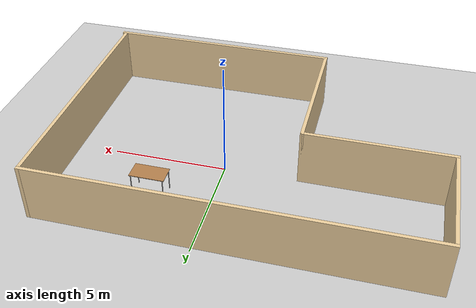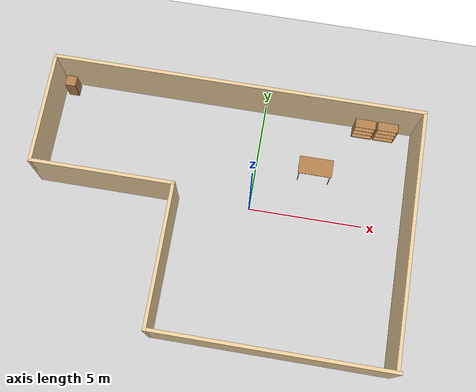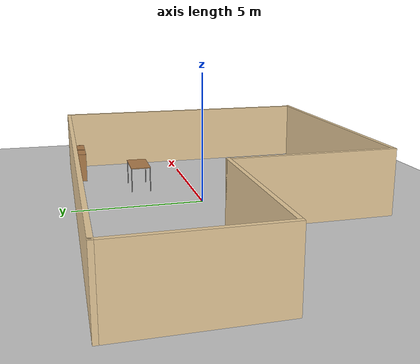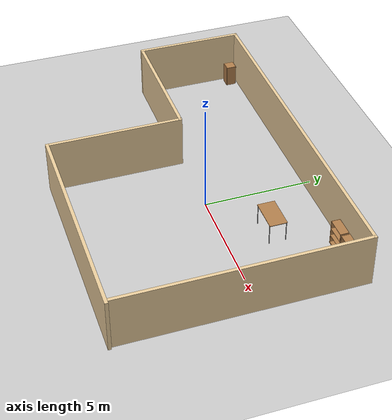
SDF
<sdf version="1.7">
 <world name="default">
  <light name="sun" type="directional">
   <pose>0 0 10 0 -0 0</pose>
   <diffuse>0.8 0.8 0.8 1</diffuse>
   <specular>0.2 0.2 0.2 1</specular>
   <attenuation>
    <range>1000</range>
    <constant>0.9</constant>
    <linear>0.01</linear>
    <quadratic>0.001</quadratic>
   </attenuation>
   <direction>-0.5 0.1 -0.9</direction>
   <spot><inner_angle>0</inner_angle><outer_angle>0</outer_angle><falloff>0</falloff></spot>
  </light>
  <model name="ground_plane">
   <static>1</static>
   <link name="link">
    <collision name="collision">
     <geometry><plane><normal>0 0 1</normal><size>100 100</size></plane></geometry>
     <surface>
      <contact><collide_bitmask>65535</collide_bitmask></contact>
      <friction><ode><mu>100</mu><mu2>50</mu2></ode></friction>
     </surface>
    </collision>
    <visual name="visual">
     <cast_shadows>0</cast_shadows>
     <geometry><plane><normal>0 0 1</normal><size>100 100</size></plane></geometry>
     <material>
      <script><uri>file://media/materials/scripts/gazebo.material</uri><name>Gazebo/Grey</name></script>
     </material>
    </visual>
   </link>
  </model>
  <gravity>0 0 -9.8</gravity>
  <magnetic_field>6e-06 2.3e-05 -4.2e-05</magnetic_field>
  <atmosphere type="adiabatic"/>
  <physics type="ode">
   <max_step_size>0.001</max_step_size>
   <real_time_factor>1</real_time_factor>
   <real_time_update_rate>1000</real_time_update_rate>
  </physics>
  <scene><ambient>0.4 0.4 0.4 1</ambient><background>0.7 0.7 0.7 1</background><shadows>1</shadows></scene>
  <audio><device>default</device></audio>
  <spherical_coordinates>
   <surface_model>EARTH_WGS84</surface_model>
   <latitude_deg>0</latitude_deg>
   <longitude_deg>0</longitude_deg>
   <elevation>0</elevation>
   <heading_deg>0</heading_deg>
  </spherical_coordinates>
  <model name="custom_room">
   <pose>-1.22692 -0.721484 0 0 -0 0</pose>
   <link name="Wall_10">
    <collision name="Wall_10_Collision">
     <geometry><box><size>10.25 0.15 2.5</size></box></geometry>
     <pose>0 0 1.25 0 -0 0</pose>
    </collision>
    <visual name="Wall_10_Visual">
     <pose>0 0 1.25 0 -0 0</pose>
     <geometry><box><size>10.25 0.15 2.5</size></box></geometry>
     <material>
      <script><uri>file://media/materials/scripts/gazebo.material</uri><name>Gazebo/Grey</name></script>
      <ambient>0.921569 0.807843 0.615686 1</ambient>
     </material>
     <meta><layer>0</layer></meta>
    </visual>
    <pose>3.05 -5.475 0 0 -0 0</pose>
   </link>
   <link name="Wall_13">
    <collision name="Wall_13_Collision">
     <geometry><box><size>10.9694 0.15 2.5</size></box></geometry>
     <pose>0 0 1.25 0 -0 0</pose>
    </collision>
    <visual name="Wall_13_Visual">
     <pose>0 0 1.25 0 -0 0</pose>
     <geometry><box><size>10.9694 0.15 2.5</size></box></geometry>
     <material>
      <script><uri>file://media/materials/scripts/gazebo.material</uri><name>Gazebo/Grey</name></script>
      <ambient>0.921569 0.807843 0.615686 1</ambient>
     </material>
     <meta><layer>0</layer></meta>
    </visual>
    <pose>8 0.065295 0 0 -0 -1.5708</pose>
   </link>
   <link name="Wall_2">
    <collision name="Wall_2_Collision">
     <geometry><box><size>16.25 0.15 2.5</size></box></geometry>
     <pose>0 0 1.25 0 -0 0</pose>
    </collision>
    <visual name="Wall_2_Visual">
     <pose>0 0 1.25 0 -0 0</pose>
     <geometry><box><size>16.25 0.15 2.5</size></box></geometry>
     <material>
      <script><uri>file://media/materials/scripts/gazebo.material</uri><name>Gazebo/Grey</name></script>
      <ambient>0.921569 0.807843 0.615686 1</ambient>
     </material>
     <meta><layer>0</layer></meta>
    </visual>
    <pose>-0.049999 5.475 0 0 -0 3.14159</pose>
   </link>
   <link name="Wall_3">
    <collision name="Wall_3_Collision">
     <geometry><box><size>5 0.15 2.5</size></box></geometry>
     <pose>0 0 1.25 0 -0 0</pose>
    </collision>
    <visual name="Wall_3_Visual">
     <pose>0 0 1.25 0 -0 0</pose>
     <geometry><box><size>5 0.15 2.5</size></box></geometry>
     <material>
      <script><uri>file://media/materials/scripts/gazebo.material</uri><name>Gazebo/Grey</name></script>
      <ambient>0.921569 0.807843 0.615686 1</ambient>
     </material>
     <meta><layer>0</layer></meta>
    </visual>
    <pose>-8.1 3.05 0 0 -0 -1.5708</pose>
   </link>
   <link name="Wall_4">
    <collision name="Wall_4_Collision">
     <geometry><box><size>6.25 0.15 2.5</size></box></geometry>
     <pose>0 0 1.25 0 -0 0</pose>
    </collision>
    <visual name="Wall_4_Visual">
     <pose>0 0 1.25 0 -0 0</pose>
     <geometry><box><size>6.25 0.15 2.5</size></box></geometry>
     <material>
      <script><uri>file://media/materials/scripts/gazebo.material</uri><name>Gazebo/Grey</name></script>
      <ambient>0.921569 0.807843 0.615686 1</ambient>
     </material>
     <meta><layer>0</layer></meta>
    </visual>
    <pose>-5.05 0.625 0 0 -0 0</pose>
   </link>
   <link name="Wall_9">
    <collision name="Wall_9_Collision">
     <geometry><box><size>6.25 0.15 2.5</size></box></geometry>
     <pose>0 0 1.25 0 -0 0</pose>
    </collision>
    <visual name="Wall_9_Visual">
     <pose>0 0 1.25 0 -0 0</pose>
     <geometry><box><size>6.25 0.15 2.5</size></box></geometry>
     <material>
      <script><uri>file://media/materials/scripts/gazebo.material</uri><name>Gazebo/Grey</name></script>
      <ambient>0.921569 0.807843 0.615686 1</ambient>
     </material>
     <meta><layer>0</layer></meta>
    </visual>
    <pose>-2 -2.425 0 0 -0 -1.5708</pose>
   </link>
   <static>1</static>
  </model>
  <model name="bookshelf">
   <static>1</static>
   <link name="link">
    <inertial><mass>1</mass></inertial>
    <collision name="back">
     <pose>0 0.005 0.6 0 -0 0</pose>
     <geometry><box><size>0.9 0.01 1.2</size></box></geometry>
    </collision>
    <visual name="visual1">
     <pose>0 0.005 0.6 0 -0 0</pose>
     <geometry><box><size>0.9 0.01 1.2</size></box></geometry>
     <material>
      <script><uri>file://media/materials/scripts/gazebo.material</uri><name>Gazebo/Wood</name></script>
     </material>
    </visual>
    <collision name="left_side">
     <pose>0.45 -0.195 0.6 0 -0 0</pose>
     <geometry><box><size>0.02 0.4 1.2</size></box></geometry>
    </collision>
    <visual name="visual2">
     <pose>0.45 -0.195 0.6 0 -0 0</pose>
     <geometry><box><size>0.02 0.4 1.2</size></box></geometry>
     <material>
      <script><uri>file://media/materials/scripts/gazebo.material</uri><name>Gazebo/Wood</name></script>
     </material>
    </visual>
    <collision name="right_side">
     <pose>-0.45 -0.195 0.6 0 -0 0</pose>
     <geometry><box><size>0.02 0.4 1.2</size></box></geometry>
    </collision>
    <visual name="visual3">
     <pose>-0.45 -0.195 0.6 0 -0 0</pose>
     <geometry><box><size>0.02 0.4 1.2</size></box></geometry>
     <material>
      <script><uri>file://media/materials/scripts/gazebo.material</uri><name>Gazebo/Wood</name></script>
     </material>
    </visual>
    <collision name="bottom">
     <pose>0 -0.195 0.03 0 -0 0</pose>
     <geometry><box><size>0.88 0.4 0.06</size></box></geometry>
    </collision>
    <visual name="visual4">
     <pose>0 -0.195 0.03 0 -0 0</pose>
     <geometry><box><size>0.88 0.4 0.06</size></box></geometry>
     <material>
      <script><uri>file://media/materials/scripts/gazebo.material</uri><name>Gazebo/Wood</name></script>
     </material>
    </visual>
    <collision name="top">
     <pose>0 -0.195 1.19 0 -0 0</pose>
     <geometry><box><size>0.88 0.4 0.02</size></box></geometry>
    </collision>
    <visual name="visual5">
     <pose>0 -0.195 1.19 0 -0 0</pose>
     <geometry><box><size>0.88 0.4 0.02</size></box></geometry>
     <material>
      <script><uri>file://media/materials/scripts/gazebo.material</uri><name>Gazebo/Wood</name></script>
     </material>
    </visual>
    <collision name="low_shelf">
     <pose>0 -0.195 0.43 0 -0 0</pose>
     <geometry><box><size>0.88 0.4 0.02</size></box></geometry>
    </collision>
    <visual name="visual6">
     <pose>0 -0.195 0.43 0 -0 0</pose>
     <geometry><box><size>0.88 0.4 0.02</size></box></geometry>
     <material>
      <script><uri>file://media/materials/scripts/gazebo.material</uri><name>Gazebo/Wood</name></script>
     </material>
    </visual>
    <collision name="high_shelf">
     <pose>0 -0.195 0.8 0 -0 0</pose>
     <geometry><box><size>0.88 0.4 0.02</size></box></geometry>
    </collision>
    <visual name="visual7">
     <pose>0 -0.195 0.8 0 -0 0</pose>
     <geometry><box><size>0.88 0.4 0.02</size></box></geometry>
     <material>
      <script><uri>file://media/materials/scripts/gazebo.material</uri><name>Gazebo/Wood</name></script>
     </material>
    </visual>
   </link>
   <pose>5.4805 4.58337 0 0 -0 0</pose>
  </model>
  <model name="cabinet">
   <static>1</static>
   <link name="cabinet_bottom_plate">
    <inertial>
     <pose>0 0 -1 0 -0 0</pose>
     <inertia><ixx>2.05</ixx><ixy>0</ixy><ixz>0</ixz><iyy>2.05</iyy><iyz>0</iyz><izz>2.05</izz></inertia>
     <mass>25</mass>
    </inertial>
    <collision name="cabinet_bottom_plate_geom">
     <pose>0 0 0.01 0 -0 0</pose>
     <geometry><box><size>0.45 0.45 0.02</size></box></geometry>
    </collision>
    <visual name="cabinet_bottom_plate_geom_visual">
     <pose>0 0 0.01 0 -0 0</pose>
     <geometry><box><size>0.45 0.45 0.02</size></box></geometry>
     <material>
      <script><uri>file://media/materials/scripts/gazebo.material</uri><name>Gazebo/Wood</name></script>
     </material>
    </visual>
    <collision name="cabinet_bottom_plate_geom_cabinet_back_plate">
     <pose>0.235 0 0.51 0 -0 0</pose>
     <geometry><box><size>0.02 0.45 1.02</size></box></geometry>
    </collision>
    <visual name="cabinet_bottom_plate_geom_cabinet_back_plate_visual">
     <pose>0.235 0 0.51 0 -0 0</pose>
     <geometry><box><size>0.02 0.45 1.02</size></box></geometry>
     <material>
      <script><uri>file://media/materials/scripts/gazebo.material</uri><name>Gazebo/Wood</name></script>
     </material>
    </visual>
    <collision name="cabinet_bottom_plate_geom_cabinet_left_plate">
     <pose>0 0.235 0.51 0 -0 0</pose>
     <geometry><box><size>0.45 0.02 1.02</size></box></geometry>
    </collision>
    <visual name="cabinet_bottom_plate_geom_cabinet_left_plate_visual">
     <pose>0 0.235 0.51 0 -0 0</pose>
     <geometry><box><size>0.45 0.02 1.02</size></box></geometry>
     <material>
      <script><uri>file://media/materials/scripts/gazebo.material</uri><name>Gazebo/Wood</name></script>
     </material>
    </visual>
    <collision name="cabinet_bottom_plate_geom_cabinet_middle_plate">
     <pose>0 0 0.51 0 -0 0</pose>
     <geometry><box><size>0.45 0.45 0.02</size></box></geometry>
    </collision>
    <visual name="cabinet_bottom_plate_geom_cabinet_middle_plate_visual">
     <pose>0 0 0.51 0 -0 0</pose>
     <geometry><box><size>0.45 0.45 0.02</size></box></geometry>
     <material>
      <script><uri>file://media/materials/scripts/gazebo.material</uri><name>Gazebo/Wood</name></script>
     </material>
    </visual>
    <collision name="cabinet_bottom_plate_geom_cabinet_right_plate">
     <pose>0 -0.235 0.51 0 -0 0</pose>
     <geometry><box><size>0.45 0.02 1.02</size></box></geometry>
    </collision>
    <visual name="cabinet_bottom_plate_geom_cabinet_right_plate_visual">
     <pose>0 -0.235 0.51 0 -0 0</pose>
     <geometry><box><size>0.45 0.02 1.02</size></box></geometry>
     <material>
      <script><uri>file://media/materials/scripts/gazebo.material</uri><name>Gazebo/Wood</name></script>
     </material>
    </visual>
    <collision name="cabinet_bottom_plate_geom_cabinet_top_plate">
     <pose>0 0 1.01 0 -0 0</pose>
     <geometry><box><size>0.45 0.45 0.02</size></box></geometry>
    </collision>
    <visual name="cabinet_bottom_plate_geom_cabinet_top_plate_visual">
     <pose>0 0 1.01 0 -0 0</pose>
     <geometry><box><size>0.45 0.45 0.02</size></box></geometry>
     <material>
      <script><uri>file://media/materials/scripts/gazebo.material</uri><name>Gazebo/Wood</name></script>
     </material>
    </visual>
   </link>
   <pose>-8.86745 4.33954 0 0 -0 0</pose>
  </model>
  <model name="bookshelf_0">
   <static>1</static>
   <link name="link">
    <inertial><mass>1</mass></inertial>
    <collision name="back">
     <pose>0 0.005 0.6 0 -0 0</pose>
     <geometry><box><size>0.9 0.01 1.2</size></box></geometry>
    </collision>
    <visual name="visual1">
     <pose>0 0.005 0.6 0 -0 0</pose>
     <geometry><box><size>0.9 0.01 1.2</size></box></geometry>
     <material>
      <script><uri>file://media/materials/scripts/gazebo.material</uri><name>Gazebo/Wood</name></script>
     </material>
    </visual>
    <collision name="left_side">
     <pose>0.45 -0.195 0.6 0 -0 0</pose>
     <geometry><box><size>0.02 0.4 1.2</size></box></geometry>
    </collision>
    <visual name="visual2">
     <pose>0.45 -0.195 0.6 0 -0 0</pose>
     <geometry><box><size>0.02 0.4 1.2</size></box></geometry>
     <material>
      <script><uri>file://media/materials/scripts/gazebo.material</uri><name>Gazebo/Wood</name></script>
     </material>
    </visual>
    <collision name="right_side">
     <pose>-0.45 -0.195 0.6 0 -0 0</pose>
     <geometry><box><size>0.02 0.4 1.2</size></box></geometry>
    </collision>
    <visual name="visual3">
     <pose>-0.45 -0.195 0.6 0 -0 0</pose>
     <geometry><box><size>0.02 0.4 1.2</size></box></geometry>
     <material>
      <script><uri>file://media/materials/scripts/gazebo.material</uri><name>Gazebo/Wood</name></script>
     </material>
    </visual>
    <collision name="bottom">
     <pose>0 -0.195 0.03 0 -0 0</pose>
     <geometry><box><size>0.88 0.4 0.06</size></box></geometry>
    </collision>
    <visual name="visual4">
     <pose>0 -0.195 0.03 0 -0 0</pose>
     <geometry><box><size>0.88 0.4 0.06</size></box></geometry>
     <material>
      <script><uri>file://media/materials/scripts/gazebo.material</uri><name>Gazebo/Wood</name></script>
     </material>
    </visual>
    <collision name="top">
     <pose>0 -0.195 1.19 0 -0 0</pose>
     <geometry><box><size>0.88 0.4 0.02</size></box></geometry>
    </collision>
    <visual name="visual5">
     <pose>0 -0.195 1.19 0 -0 0</pose>
     <geometry><box><size>0.88 0.4 0.02</size></box></geometry>
     <material>
      <script><uri>file://media/materials/scripts/gazebo.material</uri><name>Gazebo/Wood</name></script>
     </material>
    </visual>
    <collision name="low_shelf">
     <pose>0 -0.195 0.43 0 -0 0</pose>
     <geometry><box><size>0.88 0.4 0.02</size></box></geometry>
    </collision>
    <visual name="visual6">
     <pose>0 -0.195 0.43 0 -0 0</pose>
     <geometry><box><size>0.88 0.4 0.02</size></box></geometry>
     <material>
      <script><uri>file://media/materials/scripts/gazebo.material</uri><name>Gazebo/Wood</name></script>
     </material>
    </visual>
    <collision name="high_shelf">
     <pose>0 -0.195 0.8 0 -0 0</pose>
     <geometry><box><size>0.88 0.4 0.02</size></box></geometry>
    </collision>
    <visual name="visual7">
     <pose>0 -0.195 0.8 0 -0 0</pose>
     <geometry><box><size>0.88 0.4 0.02</size></box></geometry>
     <material>
      <script><uri>file://media/materials/scripts/gazebo.material</uri><name>Gazebo/Wood</name></script>
     </material>
    </visual>
   </link>
   <pose>4.49828 4.58231 0 0 -0 0</pose>
  </model>
  <model name="table">
   <static>1</static>
   <link name="link">
    <collision name="surface">
     <pose>0 0 1 0 -0 0</pose>
     <geometry><box><size>1.5 0.8 0.03</size></box></geometry>
     <surface><friction><ode><mu>0.6</mu><mu2>0.6</mu2></ode></friction></surface>
    </collision>
    <visual name="visual1">
     <pose>0 0 1 0 -0 0</pose>
     <geometry><box><size>1.5 0.8 0.03</size></box></geometry>
     <material>
      <script><uri>file://media/materials/scripts/gazebo.material</uri><name>Gazebo/Wood</name></script>
     </material>
    </visual>
    <collision name="front_left_leg">
     <pose>0.68 0.38 0.5 0 -0 0</pose>
     <geometry><cylinder><radius>0.02</radius><length>1</length></cylinder></geometry>
    </collision>
    <visual name="front_left_leg">
     <pose>0.68 0.38 0.5 0 -0 0</pose>
     <geometry><cylinder><radius>0.02</radius><length>1</length></cylinder></geometry>
     <material>
      <script><uri>file://media/materials/scripts/gazebo.material</uri><name>Gazebo/Grey</name></script>
     </material>
    </visual>
    <collision name="front_right_leg">
     <pose>0.68 -0.38 0.5 0 -0 0</pose>
     <geometry><cylinder><radius>0.02</radius><length>1</length></cylinder></geometry>
    </collision>
    <visual name="front_right_leg">
     <pose>0.68 -0.38 0.5 0 -0 0</pose>
     <geometry><cylinder><radius>0.02</radius><length>1</length></cylinder></geometry>
     <material>
      <script><uri>file://media/materials/scripts/gazebo.material</uri><name>Gazebo/Grey</name></script>
     </material>
    </visual>
    <collision name="back_right_leg">
     <pose>-0.68 -0.38 0.5 0 -0 0</pose>
     <geometry><cylinder><radius>0.02</radius><length>1</length></cylinder></geometry>
    </collision>
    <visual name="back_right_leg">
     <pose>-0.68 -0.38 0.5 0 -0 0</pose>
     <geometry><cylinder><radius>0.02</radius><length>1</length></cylinder></geometry>
     <material>
      <script><uri>file://media/materials/scripts/gazebo.material</uri><name>Gazebo/Grey</name></script>
     </material>
    </visual>
    <collision name="back_left_leg">
     <pose>-0.68 0.38 0.5 0 -0 0</pose>
     <geometry><cylinder><radius>0.02</radius><length>1</length></cylinder></geometry>
    </collision>
    <visual name="back_left_leg">
     <pose>-0.68 0.38 0.5 0 -0 0</pose>
     <geometry><cylinder><radius>0.02</radius><length>1</length></cylinder></geometry>
     <material>
      <script><uri>file://media/materials/scripts/gazebo.material</uri><name>Gazebo/Grey</name></script>
     </material>
    </visual>
   </link>
   <pose>2.59804 2.11718 0 0 -0 0</pose>
  </model>
 </world>
</sdf>
